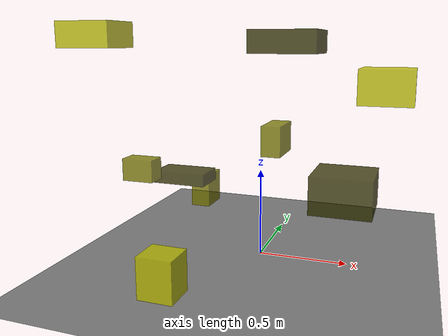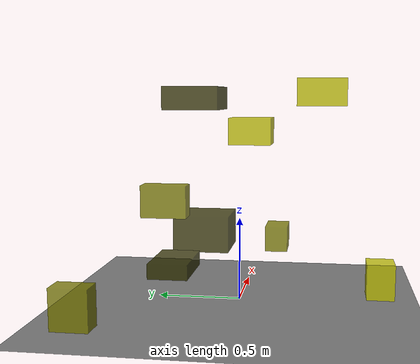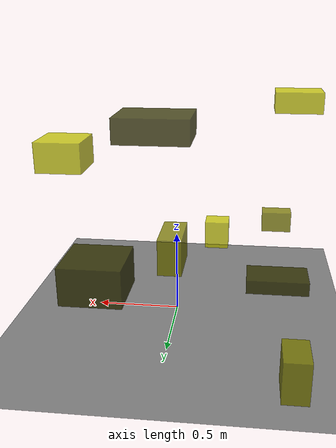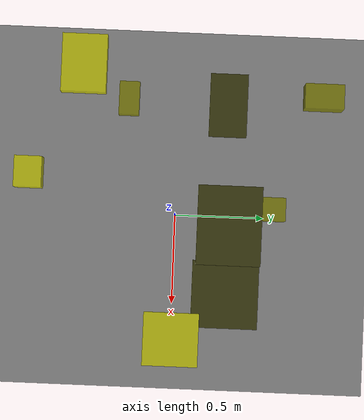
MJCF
<?xml version="1.0"?>
<mujoco model="obstacle_scene">
  <compiler angle="radian" coordinate="local"/>
  <option timestep="0.001" gravity="0 0 -9.81"/>

  <asset>
    <material name="obstacle_mat" rgba="0.8 0.8 0.0 0.8"/>
    <material name="ground_mat" rgba="0.5 0.5 0.5 1"/>
  </asset>

  <worldbody>
    <!-- Ground plane -->
    <geom name="ground" type="plane" size="3 3 0.1" material="ground_mat"/>

    <!-- Obstacles -->
    <body name="obstacle_0" pos="0.435857 0.290168 0.339335">
      <geom name="obs_0" type="box" size="0.183973 0.181624 0.116294" rgba="0.2 0.2 0.0 0.8"/>
    </body>
    <body name="obstacle_1" pos="-0.691322 0.810112 0.120996">
      <geom name="obs_1" type="box" size="0.069605 0.108768 0.118934" rgba="0.5 0.5 0.0 0.8"/>
    </body>
    <body name="obstacle_2" pos="0.672784 0.005001 0.995350">
      <geom name="obs_2" type="box" size="0.137173 0.143602 0.090479" rgba="0.8 0.8 0.0 0.8"/>
    </body>
    <body name="obstacle_3" pos="0.076002 0.281988 1.220851">
      <geom name="obs_3" type="box" size="0.202945 0.164232 0.068399" rgba="0.2 0.2 0.0 0.8"/>
    </body>
    <body name="obstacle_4" pos="-0.610355 -0.272488 0.523752">
      <geom name="obs_4" type="box" size="0.089882 0.054481 0.061737" rgba="0.5 0.5 0.0 0.8"/>
    </body>
    <body name="obstacle_5" pos="-0.721226 -0.489204 1.252433">
      <geom name="obs_5" type="box" size="0.147367 0.114847 0.064639" rgba="0.8 0.8 0.0 0.8"/>
    </body>
    <body name="obstacle_6" pos="-0.606570 0.271012 0.353332">
      <geom name="obs_6" type="box" size="0.172880 0.103651 0.039155" rgba="0.2 0.2 0.0 0.8"/>
    </body>
    <body name="obstacle_7" pos="-0.035697 0.453715 0.603110">
      <geom name="obs_7" type="box" size="0.062693 0.139154 0.098406" rgba="0.5 0.5 0.0 0.8"/>
    </body>
    <body name="obstacle_8" pos="-0.202614 -0.827868 0.205364">
      <geom name="obs_8" type="box" size="0.086206 0.077149 0.100218" rgba="0.8 0.8 0.0 0.8"/>
    </body>
  </worldbody>
</mujoco>
